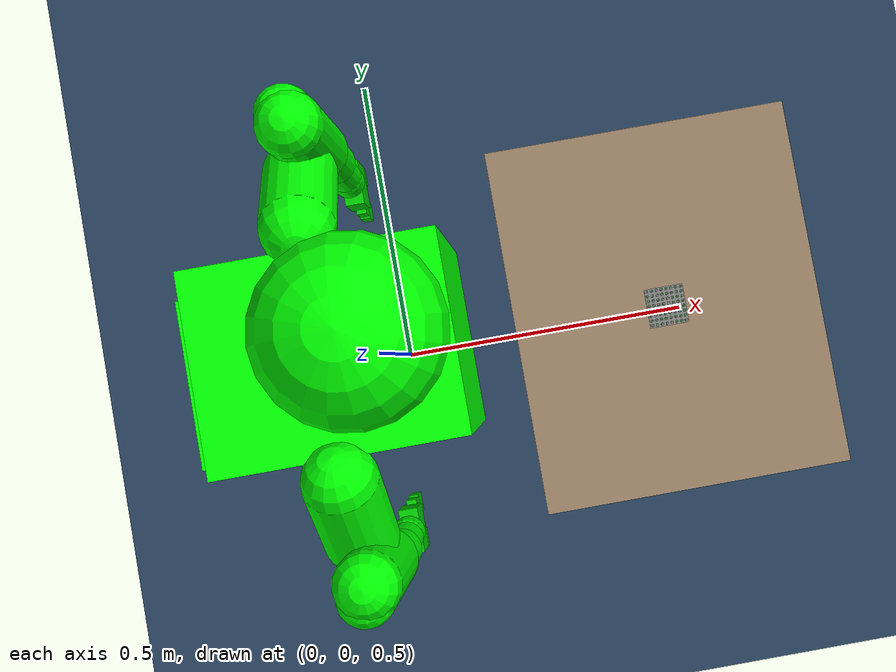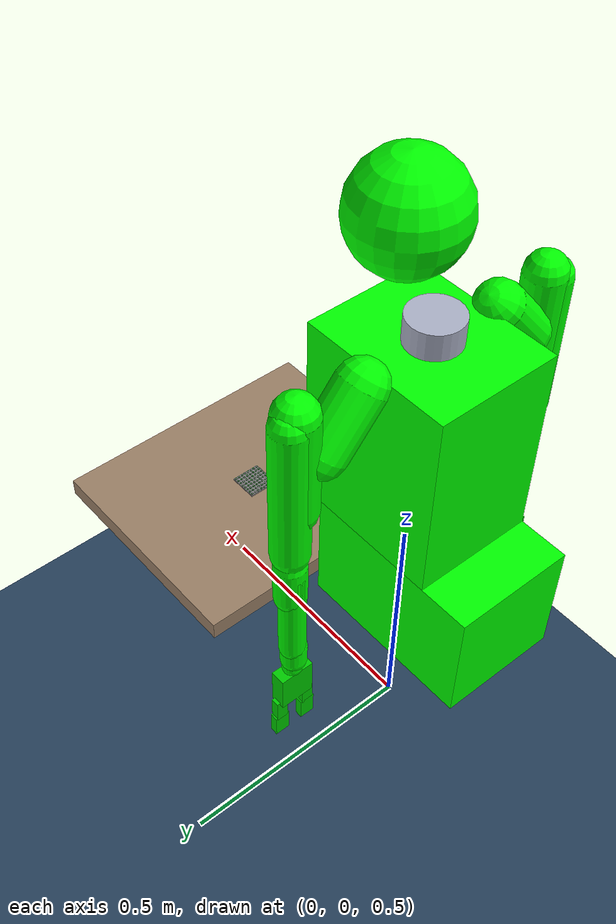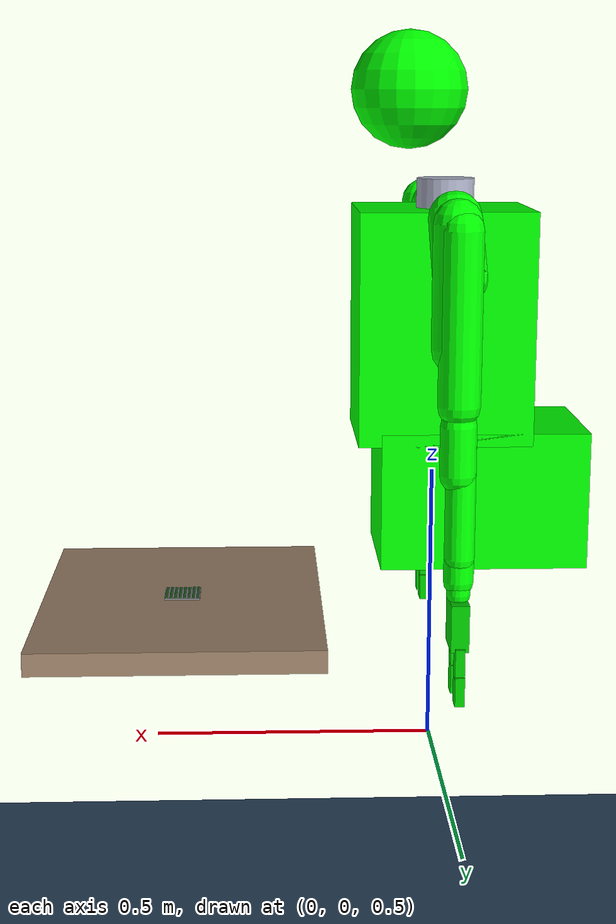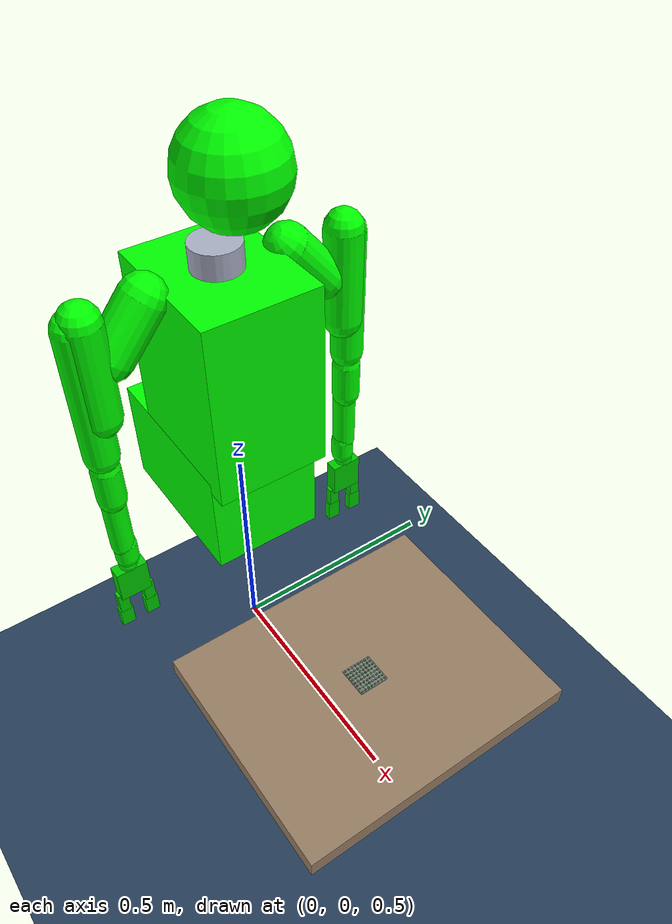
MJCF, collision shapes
<mujoco model="alex_lego_workspace">
    <compiler meshdir="../robots/alex/" balanceinertia="true" />
    <include file="../robots/alex/alex.xml" />
    <option timestep="0.002" gravity="0 0 -9.81" integrator="implicitfast" cone="pyramidal" solver="Newton" iterations="80" ls_iterations="10">
        <flag energy="enable" />
    </option>
    <default>
        <default class="lego/stud">
            <geom contype="6" conaffinity="7" solref="0.003 1.0" solimp="0.97 0.995 0.001 0.5 4" friction="0.65 0.005 0.005" condim="4" />
        </default>
        <default class="lego/tube">
            <geom contype="4" conaffinity="4" solref="0.003 1.0" solimp="0.97 0.995 0.001 0.5 4" friction="0.65 0.005 0.005" condim="4" />
        </default>
        <default class="lego/brick_surface">
            <geom contype="2" conaffinity="3" solref="0.005 1.0" solimp="0.9 0.95 0.001 0.5 2" friction="0.4 0.005 0.002" condim="3" />
        </default>
        <default class="lego/baseplate">
            <geom contype="2" conaffinity="3" solref="0.005 1.0" solimp="0.9 0.95 0.001 0.5 2" friction="0.6 0.01 0.005" condim="3" />
        </default>
    </default>
    <statistic center="0 0 1.0" extent="1.5" />
    <visual>
        <headlight diffuse="0.6 0.6 0.6" ambient="0.3 0.3 0.3" specular="0 0 0" />
        <rgba haze="0.15 0.25 0.35 1" />
        <global azimuth="120" elevation="-20" offwidth="1280" offheight="720" />
    </visual>
    <asset>
        <texture type="2d" name="groundplane" builtin="checker" rgb1="0.2 0.3 0.4" rgb2="0.1 0.2 0.3" width="300" height="300" />
        <material name="groundplane" texture="groundplane" texuniform="true" texrepeat="5 5" />
        <material name="table_wood" rgba="0.6 0.5 0.4 1" />
    </asset>
    <worldbody>
        <light pos="0 0 3" dir="0 0 -1" directional="true" />
        <camera name="overhead" pos="0 -2 2" xyaxes="1 0 0 0 0.7 0.7" />
        <camera name="third_person" pos="2.0 -1.3 1.7" xyaxes="0.55 0.83 0 -0.25 0.17 0.95" fovy="60" />
        <camera name="workspace_closeup" pos="0.6 -0.25 1.05" xyaxes="0.85 0.53 0 -0.22 0.35 0.91" fovy="50" />
        <geom name="floor" type="plane" size="0 0 0.05" material="groundplane" contype="1" conaffinity="1" priority="1" friction="0.8" condim="3" />
        <body name="table" pos="0.45 0 0.75">
            <geom type="box" size="0.25 0.3 0.02" material="table_wood" contype="1" conaffinity="1" friction="0.6" mass="10" />
        </body>
        <body name="baseplate_8x8" pos="0.45 0 0.77">
            <inertial pos="0 0 0.0016" mass="0.015744" diaginertia="0.0000053538 0.0000053538 0.0000106808" />
            <geom class="lego/baseplate" name="baseplate_8x8_surface" type="box" size="0.0319 0.0319 0.0016" pos="0 0 0.0016" group="3" />
            <geom name="baseplate_8x8_surface_vis" type="box" size="0.0319 0.0319 0.0016" pos="0 0 0.0016" group="0" contype="0" conaffinity="0" rgba="0.16 0.5 0.16 1" />
            <geom class="lego/stud" name="baseplate_8x8_stud_0_0" type="cylinder" size="0.00235 0.00085" pos="-0.028 -0.028 0.00405" group="3" />
            <geom name="baseplate_8x8_stud_0_0_vis" type="cylinder" size="0.0024 0.00085" pos="-0.028 -0.028 0.00405" group="0" contype="0" conaffinity="0" rgba="0.16 0.5 0.16 1" />
            <geom class="lego/stud" name="baseplate_8x8_stud_0_1" type="cylinder" size="0.00235 0.00085" pos="-0.028 -0.02 0.00405" group="3" />
            <geom name="baseplate_8x8_stud_0_1_vis" type="cylinder" size="0.0024 0.00085" pos="-0.028 -0.02 0.00405" group="0" contype="0" conaffinity="0" rgba="0.16 0.5 0.16 1" />
            <geom class="lego/stud" name="baseplate_8x8_stud_0_2" type="cylinder" size="0.00235 0.00085" pos="-0.028 -0.012 0.00405" group="3" />
            <geom name="baseplate_8x8_stud_0_2_vis" type="cylinder" size="0.0024 0.00085" pos="-0.028 -0.012 0.00405" group="0" contype="0" conaffinity="0" rgba="0.16 0.5 0.16 1" />
            <geom class="lego/stud" name="baseplate_8x8_stud_0_3" type="cylinder" size="0.00235 0.00085" pos="-0.028 -0.004 0.00405" group="3" />
            <geom name="baseplate_8x8_stud_0_3_vis" type="cylinder" size="0.0024 0.00085" pos="-0.028 -0.004 0.00405" group="0" contype="0" conaffinity="0" rgba="0.16 0.5 0.16 1" />
            <geom class="lego/stud" name="baseplate_8x8_stud_0_4" type="cylinder" size="0.00235 0.00085" pos="-0.028 0.004 0.00405" group="3" />
            <geom name="baseplate_8x8_stud_0_4_vis" type="cylinder" size="0.0024 0.00085" pos="-0.028 0.004 0.00405" group="0" contype="0" conaffinity="0" rgba="0.16 0.5 0.16 1" />
            <geom class="lego/stud" name="baseplate_8x8_stud_0_5" type="cylinder" size="0.00235 0.00085" pos="-0.028 0.012 0.00405" group="3" />
            <geom name="baseplate_8x8_stud_0_5_vis" type="cylinder" size="0.0024 0.00085" pos="-0.028 0.012 0.00405" group="0" contype="0" conaffinity="0" rgba="0.16 0.5 0.16 1" />
            <geom class="lego/stud" name="baseplate_8x8_stud_0_6" type="cylinder" size="0.00235 0.00085" pos="-0.028 0.02 0.00405" group="3" />
            <geom name="baseplate_8x8_stud_0_6_vis" type="cylinder" size="0.0024 0.00085" pos="-0.028 0.02 0.00405" group="0" contype="0" conaffinity="0" rgba="0.16 0.5 0.16 1" />
            <geom class="lego/stud" name="baseplate_8x8_stud_0_7" type="cylinder" size="0.00235 0.00085" pos="-0.028 0.028 0.00405" group="3" />
            <geom name="baseplate_8x8_stud_0_7_vis" type="cylinder" size="0.0024 0.00085" pos="-0.028 0.028 0.00405" group="0" contype="0" conaffinity="0" rgba="0.16 0.5 0.16 1" />
            <geom class="lego/stud" name="baseplate_8x8_stud_1_0" type="cylinder" size="0.00235 0.00085" pos="-0.02 -0.028 0.00405" group="3" />
            <geom name="baseplate_8x8_stud_1_0_vis" type="cylinder" size="0.0024 0.00085" pos="-0.02 -0.028 0.00405" group="0" contype="0" conaffinity="0" rgba="0.16 0.5 0.16 1" />
            <geom class="lego/stud" name="baseplate_8x8_stud_1_1" type="cylinder" size="0.00235 0.00085" pos="-0.02 -0.02 0.00405" group="3" />
            <geom name="baseplate_8x8_stud_1_1_vis" type="cylinder" size="0.0024 0.00085" pos="-0.02 -0.02 0.00405" group="0" contype="0" conaffinity="0" rgba="0.16 0.5 0.16 1" />
            <geom class="lego/stud" name="baseplate_8x8_stud_1_2" type="cylinder" size="0.00235 0.00085" pos="-0.02 -0.012 0.00405" group="3" />
            <geom name="baseplate_8x8_stud_1_2_vis" type="cylinder" size="0.0024 0.00085" pos="-0.02 -0.012 0.00405" group="0" contype="0" conaffinity="0" rgba="0.16 0.5 0.16 1" />
            <geom class="lego/stud" name="baseplate_8x8_stud_1_3" type="cylinder" size="0.00235 0.00085" pos="-0.02 -0.004 0.00405" group="3" />
            <geom name="baseplate_8x8_stud_1_3_vis" type="cylinder" size="0.0024 0.00085" pos="-0.02 -0.004 0.00405" group="0" contype="0" conaffinity="0" rgba="0.16 0.5 0.16 1" />
            <geom class="lego/stud" name="baseplate_8x8_stud_1_4" type="cylinder" size="0.00235 0.00085" pos="-0.02 0.004 0.00405" group="3" />
            <geom name="baseplate_8x8_stud_1_4_vis" type="cylinder" size="0.0024 0.00085" pos="-0.02 0.004 0.00405" group="0" contype="0" conaffinity="0" rgba="0.16 0.5 0.16 1" />
            <geom class="lego/stud" name="baseplate_8x8_stud_1_5" type="cylinder" size="0.00235 0.00085" pos="-0.02 0.012 0.00405" group="3" />
            <geom name="baseplate_8x8_stud_1_5_vis" type="cylinder" size="0.0024 0.00085" pos="-0.02 0.012 0.00405" group="0" contype="0" conaffinity="0" rgba="0.16 0.5 0.16 1" />
            <geom class="lego/stud" name="baseplate_8x8_stud_1_6" type="cylinder" size="0.00235 0.00085" pos="-0.02 0.02 0.00405" group="3" />
            <geom name="baseplate_8x8_stud_1_6_vis" type="cylinder" size="0.0024 0.00085" pos="-0.02 0.02 0.00405" group="0" contype="0" conaffinity="0" rgba="0.16 0.5 0.16 1" />
            <geom class="lego/stud" name="baseplate_8x8_stud_1_7" type="cylinder" size="0.00235 0.00085" pos="-0.02 0.028 0.00405" group="3" />
            <geom name="baseplate_8x8_stud_1_7_vis" type="cylinder" size="0.0024 0.00085" pos="-0.02 0.028 0.00405" group="0" contype="0" conaffinity="0" rgba="0.16 0.5 0.16 1" />
            <geom class="lego/stud" name="baseplate_8x8_stud_2_0" type="cylinder" size="0.00235 0.00085" pos="-0.012 -0.028 0.00405" group="3" />
            <geom name="baseplate_8x8_stud_2_0_vis" type="cylinder" size="0.0024 0.00085" pos="-0.012 -0.028 0.00405" group="0" contype="0" conaffinity="0" rgba="0.16 0.5 0.16 1" />
            <geom class="lego/stud" name="baseplate_8x8_stud_2_1" type="cylinder" size="0.00235 0.00085" pos="-0.012 -0.02 0.00405" group="3" />
            <geom name="baseplate_8x8_stud_2_1_vis" type="cylinder" size="0.0024 0.00085" pos="-0.012 -0.02 0.00405" group="0" contype="0" conaffinity="0" rgba="0.16 0.5 0.16 1" />
            <geom class="lego/stud" name="baseplate_8x8_stud_2_2" type="cylinder" size="0.00235 0.00085" pos="-0.012 -0.012 0.00405" group="3" />
            <geom name="baseplate_8x8_stud_2_2_vis" type="cylinder" size="0.0024 0.00085" pos="-0.012 -0.012 0.00405" group="0" contype="0" conaffinity="0" rgba="0.16 0.5 0.16 1" />
            <geom class="lego/stud" name="baseplate_8x8_stud_2_3" type="cylinder" size="0.00235 0.00085" pos="-0.012 -0.004 0.00405" group="3" />
            <geom name="baseplate_8x8_stud_2_3_vis" type="cylinder" size="0.0024 0.00085" pos="-0.012 -0.004 0.00405" group="0" contype="0" conaffinity="0" rgba="0.16 0.5 0.16 1" />
            <geom class="lego/stud" name="baseplate_8x8_stud_2_4" type="cylinder" size="0.00235 0.00085" pos="-0.012 0.004 0.00405" group="3" />
            <geom name="baseplate_8x8_stud_2_4_vis" type="cylinder" size="0.0024 0.00085" pos="-0.012 0.004 0.00405" group="0" contype="0" conaffinity="0" rgba="0.16 0.5 0.16 1" />
            <geom class="lego/stud" name="baseplate_8x8_stud_2_5" type="cylinder" size="0.00235 0.00085" pos="-0.012 0.012 0.00405" group="3" />
            <geom name="baseplate_8x8_stud_2_5_vis" type="cylinder" size="0.0024 0.00085" pos="-0.012 0.012 0.00405" group="0" contype="0" conaffinity="0" rgba="0.16 0.5 0.16 1" />
            <geom class="lego/stud" name="baseplate_8x8_stud_2_6" type="cylinder" size="0.00235 0.00085" pos="-0.012 0.02 0.00405" group="3" />
            <geom name="baseplate_8x8_stud_2_6_vis" type="cylinder" size="0.0024 0.00085" pos="-0.012 0.02 0.00405" group="0" contype="0" conaffinity="0" rgba="0.16 0.5 0.16 1" />
            <geom class="lego/stud" name="baseplate_8x8_stud_2_7" type="cylinder" size="0.00235 0.00085" pos="-0.012 0.028 0.00405" group="3" />
            <geom name="baseplate_8x8_stud_2_7_vis" type="cylinder" size="0.0024 0.00085" pos="-0.012 0.028 0.00405" group="0" contype="0" conaffinity="0" rgba="0.16 0.5 0.16 1" />
            <geom class="lego/stud" name="baseplate_8x8_stud_3_0" type="cylinder" size="0.00235 0.00085" pos="-0.004 -0.028 0.00405" group="3" />
            <geom name="baseplate_8x8_stud_3_0_vis" type="cylinder" size="0.0024 0.00085" pos="-0.004 -0.028 0.00405" group="0" contype="0" conaffinity="0" rgba="0.16 0.5 0.16 1" />
            <geom class="lego/stud" name="baseplate_8x8_stud_3_1" type="cylinder" size="0.00235 0.00085" pos="-0.004 -0.02 0.00405" group="3" />
            <geom name="baseplate_8x8_stud_3_1_vis" type="cylinder" size="0.0024 0.00085" pos="-0.004 -0.02 0.00405" group="0" contype="0" conaffinity="0" rgba="0.16 0.5 0.16 1" />
            <geom class="lego/stud" name="baseplate_8x8_stud_3_2" type="cylinder" size="0.00235 0.00085" pos="-0.004 -0.012 0.00405" group="3" />
            <geom name="baseplate_8x8_stud_3_2_vis" type="cylinder" size="0.0024 0.00085" pos="-0.004 -0.012 0.00405" group="0" contype="0" conaffinity="0" rgba="0.16 0.5 0.16 1" />
            <geom class="lego/stud" name="baseplate_8x8_stud_3_3" type="cylinder" size="0.00235 0.00085" pos="-0.004 -0.004 0.00405" group="3" />
            <geom name="baseplate_8x8_stud_3_3_vis" type="cylinder" size="0.0024 0.00085" pos="-0.004 -0.004 0.00405" group="0" contype="0" conaffinity="0" rgba="0.16 0.5 0.16 1" />
            <geom class="lego/stud" name="baseplate_8x8_stud_3_4" type="cylinder" size="0.00235 0.00085" pos="-0.004 0.004 0.00405" group="3" />
            <geom name="baseplate_8x8_stud_3_4_vis" type="cylinder" size="0.0024 0.00085" pos="-0.004 0.004 0.00405" group="0" contype="0" conaffinity="0" rgba="0.16 0.5 0.16 1" />
            <geom class="lego/stud" name="baseplate_8x8_stud_3_5" type="cylinder" size="0.00235 0.00085" pos="-0.004 0.012 0.00405" group="3" />
            <geom name="baseplate_8x8_stud_3_5_vis" type="cylinder" size="0.0024 0.00085" pos="-0.004 0.012 0.00405" group="0" contype="0" conaffinity="0" rgba="0.16 0.5 0.16 1" />
            <geom class="lego/stud" name="baseplate_8x8_stud_3_6" type="cylinder" size="0.00235 0.00085" pos="-0.004 0.02 0.00405" group="3" />
            <geom name="baseplate_8x8_stud_3_6_vis" type="cylinder" size="0.0024 0.00085" pos="-0.004 0.02 0.00405" group="0" contype="0" conaffinity="0" rgba="0.16 0.5 0.16 1" />
            <geom class="lego/stud" name="baseplate_8x8_stud_3_7" type="cylinder" size="0.00235 0.00085" pos="-0.004 0.028 0.00405" group="3" />
            <geom name="baseplate_8x8_stud_3_7_vis" type="cylinder" size="0.0024 0.00085" pos="-0.004 0.028 0.00405" group="0" contype="0" conaffinity="0" rgba="0.16 0.5 0.16 1" />
            <geom class="lego/stud" name="baseplate_8x8_stud_4_0" type="cylinder" size="0.00235 0.00085" pos="0.004 -0.028 0.00405" group="3" />
            <geom name="baseplate_8x8_stud_4_0_vis" type="cylinder" size="0.0024 0.00085" pos="0.004 -0.028 0.00405" group="0" contype="0" conaffinity="0" rgba="0.16 0.5 0.16 1" />
            <geom class="lego/stud" name="baseplate_8x8_stud_4_1" type="cylinder" size="0.00235 0.00085" pos="0.004 -0.02 0.00405" group="3" />
            <geom name="baseplate_8x8_stud_4_1_vis" type="cylinder" size="0.0024 0.00085" pos="0.004 -0.02 0.00405" group="0" contype="0" conaffinity="0" rgba="0.16 0.5 0.16 1" />
            <geom class="lego/stud" name="baseplate_8x8_stud_4_2" type="cylinder" size="0.00235 0.00085" pos="0.004 -0.012 0.00405" group="3" />
            <geom name="baseplate_8x8_stud_4_2_vis" type="cylinder" size="0.0024 0.00085" pos="0.004 -0.012 0.00405" group="0" contype="0" conaffinity="0" rgba="0.16 0.5 0.16 1" />
            <geom class="lego/stud" name="baseplate_8x8_stud_4_3" type="cylinder" size="0.00235 0.00085" pos="0.004 -0.004 0.00405" group="3" />
            <geom name="baseplate_8x8_stud_4_3_vis" type="cylinder" size="0.0024 0.00085" pos="0.004 -0.004 0.00405" group="0" contype="0" conaffinity="0" rgba="0.16 0.5 0.16 1" />
            <geom class="lego/stud" name="baseplate_8x8_stud_4_4" type="cylinder" size="0.00235 0.00085" pos="0.004 0.004 0.00405" group="3" />
            <geom name="baseplate_8x8_stud_4_4_vis" type="cylinder" size="0.0024 0.00085" pos="0.004 0.004 0.00405" group="0" contype="0" conaffinity="0" rgba="0.16 0.5 0.16 1" />
            <geom class="lego/stud" name="baseplate_8x8_stud_4_5" type="cylinder" size="0.00235 0.00085" pos="0.004 0.012 0.00405" group="3" />
            <geom name="baseplate_8x8_stud_4_5_vis" type="cylinder" size="0.0024 0.00085" pos="0.004 0.012 0.00405" group="0" contype="0" conaffinity="0" rgba="0.16 0.5 0.16 1" />
            <geom class="lego/stud" name="baseplate_8x8_stud_4_6" type="cylinder" size="0.00235 0.00085" pos="0.004 0.02 0.00405" group="3" />
            <geom name="baseplate_8x8_stud_4_6_vis" type="cylinder" size="0.0024 0.00085" pos="0.004 0.02 0.00405" group="0" contype="0" conaffinity="0" rgba="0.16 0.5 0.16 1" />
            <geom class="lego/stud" name="baseplate_8x8_stud_4_7" type="cylinder" size="0.00235 0.00085" pos="0.004 0.028 0.00405" group="3" />
            <geom name="baseplate_8x8_stud_4_7_vis" type="cylinder" size="0.0024 0.00085" pos="0.004 0.028 0.00405" group="0" contype="0" conaffinity="0" rgba="0.16 0.5 0.16 1" />
            <geom class="lego/stud" name="baseplate_8x8_stud_5_0" type="cylinder" size="0.00235 0.00085" pos="0.012 -0.028 0.00405" group="3" />
            <geom name="baseplate_8x8_stud_5_0_vis" type="cylinder" size="0.0024 0.00085" pos="0.012 -0.028 0.00405" group="0" contype="0" conaffinity="0" rgba="0.16 0.5 0.16 1" />
            <geom class="lego/stud" name="baseplate_8x8_stud_5_1" type="cylinder" size="0.00235 0.00085" pos="0.012 -0.02 0.00405" group="3" />
            <geom name="baseplate_8x8_stud_5_1_vis" type="cylinder" size="0.0024 0.00085" pos="0.012 -0.02 0.00405" group="0" contype="0" conaffinity="0" rgba="0.16 0.5 0.16 1" />
            <geom class="lego/stud" name="baseplate_8x8_stud_5_2" type="cylinder" size="0.00235 0.00085" pos="0.012 -0.012 0.00405" group="3" />
            <geom name="baseplate_8x8_stud_5_2_vis" type="cylinder" size="0.0024 0.00085" pos="0.012 -0.012 0.00405" group="0" contype="0" conaffinity="0" rgba="0.16 0.5 0.16 1" />
            <geom class="lego/stud" name="baseplate_8x8_stud_5_3" type="cylinder" size="0.00235 0.00085" pos="0.012 -0.004 0.00405" group="3" />
            <geom name="baseplate_8x8_stud_5_3_vis" type="cylinder" size="0.0024 0.00085" pos="0.012 -0.004 0.00405" group="0" contype="0" conaffinity="0" rgba="0.16 0.5 0.16 1" />
            <geom class="lego/stud" name="baseplate_8x8_stud_5_4" type="cylinder" size="0.00235 0.00085" pos="0.012 0.004 0.00405" group="3" />
            <geom name="baseplate_8x8_stud_5_4_vis" type="cylinder" size="0.0024 0.00085" pos="0.012 0.004 0.00405" group="0" contype="0" conaffinity="0" rgba="0.16 0.5 0.16 1" />
            <geom class="lego/stud" name="baseplate_8x8_stud_5_5" type="cylinder" size="0.00235 0.00085" pos="0.012 0.012 0.00405" group="3" />
            <geom name="baseplate_8x8_stud_5_5_vis" type="cylinder" size="0.0024 0.00085" pos="0.012 0.012 0.00405" group="0" contype="0" conaffinity="0" rgba="0.16 0.5 0.16 1" />
            <geom class="lego/stud" name="baseplate_8x8_stud_5_6" type="cylinder" size="0.00235 0.00085" pos="0.012 0.02 0.00405" group="3" />
            <geom name="baseplate_8x8_stud_5_6_vis" type="cylinder" size="0.0024 0.00085" pos="0.012 0.02 0.00405" group="0" contype="0" conaffinity="0" rgba="0.16 0.5 0.16 1" />
            <geom class="lego/stud" name="baseplate_8x8_stud_5_7" type="cylinder" size="0.00235 0.00085" pos="0.012 0.028 0.00405" group="3" />
            <geom name="baseplate_8x8_stud_5_7_vis" type="cylinder" size="0.0024 0.00085" pos="0.012 0.028 0.00405" group="0" contype="0" conaffinity="0" rgba="0.16 0.5 0.16 1" />
            <geom class="lego/stud" name="baseplate_8x8_stud_6_0" type="cylinder" size="0.00235 0.00085" pos="0.02 -0.028 0.00405" group="3" />
            <geom name="baseplate_8x8_stud_6_0_vis" type="cylinder" size="0.0024 0.00085" pos="0.02 -0.028 0.00405" group="0" contype="0" conaffinity="0" rgba="0.16 0.5 0.16 1" />
            <geom class="lego/stud" name="baseplate_8x8_stud_6_1" type="cylinder" size="0.00235 0.00085" pos="0.02 -0.02 0.00405" group="3" />
            <geom name="baseplate_8x8_stud_6_1_vis" type="cylinder" size="0.0024 0.00085" pos="0.02 -0.02 0.00405" group="0" contype="0" conaffinity="0" rgba="0.16 0.5 0.16 1" />
            <geom class="lego/stud" name="baseplate_8x8_stud_6_2" type="cylinder" size="0.00235 0.00085" pos="0.02 -0.012 0.00405" group="3" />
            <geom name="baseplate_8x8_stud_6_2_vis" type="cylinder" size="0.0024 0.00085" pos="0.02 -0.012 0.00405" group="0" contype="0" conaffinity="0" rgba="0.16 0.5 0.16 1" />
            <geom class="lego/stud" name="baseplate_8x8_stud_6_3" type="cylinder" size="0.00235 0.00085" pos="0.02 -0.004 0.00405" group="3" />
            <geom name="baseplate_8x8_stud_6_3_vis" type="cylinder" size="0.0024 0.00085" pos="0.02 -0.004 0.00405" group="0" contype="0" conaffinity="0" rgba="0.16 0.5 0.16 1" />
            <geom class="lego/stud" name="baseplate_8x8_stud_6_4" type="cylinder" size="0.00235 0.00085" pos="0.02 0.004 0.00405" group="3" />
            <geom name="baseplate_8x8_stud_6_4_vis" type="cylinder" size="0.0024 0.00085" pos="0.02 0.004 0.00405" group="0" contype="0" conaffinity="0" rgba="0.16 0.5 0.16 1" />
            <geom class="lego/stud" name="baseplate_8x8_stud_6_5" type="cylinder" size="0.00235 0.00085" pos="0.02 0.012 0.00405" group="3" />
            <geom name="baseplate_8x8_stud_6_5_vis" type="cylinder" size="0.0024 0.00085" pos="0.02 0.012 0.00405" group="0" contype="0" conaffinity="0" rgba="0.16 0.5 0.16 1" />
            <geom class="lego/stud" name="baseplate_8x8_stud_6_6" type="cylinder" size="0.00235 0.00085" pos="0.02 0.02 0.00405" group="3" />
            <geom name="baseplate_8x8_stud_6_6_vis" type="cylinder" size="0.0024 0.00085" pos="0.02 0.02 0.00405" group="0" contype="0" conaffinity="0" rgba="0.16 0.5 0.16 1" />
            <geom class="lego/stud" name="baseplate_8x8_stud_6_7" type="cylinder" size="0.00235 0.00085" pos="0.02 0.028 0.00405" group="3" />
            <geom name="baseplate_8x8_stud_6_7_vis" type="cylinder" size="0.0024 0.00085" pos="0.02 0.028 0.00405" group="0" contype="0" conaffinity="0" rgba="0.16 0.5 0.16 1" />
            <geom class="lego/stud" name="baseplate_8x8_stud_7_0" type="cylinder" size="0.00235 0.00085" pos="0.028 -0.028 0.00405" group="3" />
            <geom name="baseplate_8x8_stud_7_0_vis" type="cylinder" size="0.0024 0.00085" pos="0.028 -0.028 0.00405" group="0" contype="0" conaffinity="0" rgba="0.16 0.5 0.16 1" />
            <geom class="lego/stud" name="baseplate_8x8_stud_7_1" type="cylinder" size="0.00235 0.00085" pos="0.028 -0.02 0.00405" group="3" />
            <geom name="baseplate_8x8_stud_7_1_vis" type="cylinder" size="0.0024 0.00085" pos="0.028 -0.02 0.00405" group="0" contype="0" conaffinity="0" rgba="0.16 0.5 0.16 1" />
            <geom class="lego/stud" name="baseplate_8x8_stud_7_2" type="cylinder" size="0.00235 0.00085" pos="0.028 -0.012 0.00405" group="3" />
            <geom name="baseplate_8x8_stud_7_2_vis" type="cylinder" size="0.0024 0.00085" pos="0.028 -0.012 0.00405" group="0" contype="0" conaffinity="0" rgba="0.16 0.5 0.16 1" />
            <geom class="lego/stud" name="baseplate_8x8_stud_7_3" type="cylinder" size="0.00235 0.00085" pos="0.028 -0.004 0.00405" group="3" />
            <geom name="baseplate_8x8_stud_7_3_vis" type="cylinder" size="0.0024 0.00085" pos="0.028 -0.004 0.00405" group="0" contype="0" conaffinity="0" rgba="0.16 0.5 0.16 1" />
            <geom class="lego/stud" name="baseplate_8x8_stud_7_4" type="cylinder" size="0.00235 0.00085" pos="0.028 0.004 0.00405" group="3" />
            <geom name="baseplate_8x8_stud_7_4_vis" type="cylinder" size="0.0024 0.00085" pos="0.028 0.004 0.00405" group="0" contype="0" conaffinity="0" rgba="0.16 0.5 0.16 1" />
            <geom class="lego/stud" name="baseplate_8x8_stud_7_5" type="cylinder" size="0.00235 0.00085" pos="0.028 0.012 0.00405" group="3" />
            <geom name="baseplate_8x8_stud_7_5_vis" type="cylinder" size="0.0024 0.00085" pos="0.028 0.012 0.00405" group="0" contype="0" conaffinity="0" rgba="0.16 0.5 0.16 1" />
            <geom class="lego/stud" name="baseplate_8x8_stud_7_6" type="cylinder" size="0.00235 0.00085" pos="0.028 0.02 0.00405" group="3" />
            <geom name="baseplate_8x8_stud_7_6_vis" type="cylinder" size="0.0024 0.00085" pos="0.028 0.02 0.00405" group="0" contype="0" conaffinity="0" rgba="0.16 0.5 0.16 1" />
            <geom class="lego/stud" name="baseplate_8x8_stud_7_7" type="cylinder" size="0.00235 0.00085" pos="0.028 0.028 0.00405" group="3" />
            <geom name="baseplate_8x8_stud_7_7_vis" type="cylinder" size="0.0024 0.00085" pos="0.028 0.028 0.00405" group="0" contype="0" conaffinity="0" rgba="0.16 0.5 0.16 1" />
        </body>
    </worldbody>
    <keyframe>
        <key name="home" qpos="0 0 0 0 0 0 0 0 0 0 0 0 0 0 0 0 0 0 0 0 0 0 0" ctrl="0 0 0 0 0 0 0 0 0 0 0 0 0 0 0 0 0" />
    </keyframe>
</mujoco>

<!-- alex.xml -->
<mujoco model="alex_upper_body">

    <compiler angle="radian" eulerseq="XYZ" autolimits="true"
              balanceinertia="true"/>

    <option iterations="50" ls_iterations="10" timestep="0.002" integrator="implicitfast">
        <flag energy="enable"/>
    </option>

    <default>
        <default class="alex">
            <joint damping="2" frictionloss="0.3"/>
            <position inheritrange="1"/>
            <default class="alex/spine">
                <joint axis="0 0 1" range="-0.5235987756 0.5235987756"
                       armature="0.01" damping="2.0" frictionloss="0.3"/>
                <position forcerange="-150 150" kp="112"/>
            </default>
            <default class="alex/shoulder">
                <default class="alex/shoulder/y">
                    <joint axis="0 1 0" range="-3.141592 1.22173"
                           armature="0.01" damping="2.0" frictionloss="0.3"/>
                    <position forcerange="-150 150" kp="112.5"/>
                </default>
                <default class="alex/shoulder/x">
                    <joint axis="1 0 0" armature="0.01" damping="2.0" frictionloss="0.3"/>
                    <position forcerange="-100 100" kp="75"/>
                    <default class="alex/shoulder/x/left">
                        <joint range="-0.349066 2.79253"/>
                    </default>
                    <default class="alex/shoulder/x/right">
                        <joint range="-2.79253 0.349066"/>
                    </default>
                </default>
                <default class="alex/shoulder/z">
                    <joint axis="0 0 1" armature="0.01" damping="1.5" frictionloss="0.2"/>
                    <position forcerange="-80 80" kp="60"/>
                    <default class="alex/shoulder/z/left">
                        <joint range="-1.91986 1.22173"/>
                    </default>
                    <default class="alex/shoulder/z/right">
                        <joint range="-1.22173 1.91986"/>
                    </default>
                </default>
            </default>
            <default class="alex/elbow">
                <joint axis="0 1 0" range="-2.35619 0.174532925"
                       armature="0.01" damping="1.5" frictionloss="0.2"/>
                <position forcerange="-80 80" kp="60"/>
            </default>
            <default class="alex/wrist">
                <position forcerange="-20 20" kp="15"/>
                <default class="alex/wrist/z">
                    <joint axis="0 0 1" range="-2.61799 2.61799"
                           armature="0.01" damping="0.5" frictionloss="0.1"/>
                </default>
                <default class="alex/wrist/x">
                    <joint axis="1 0 0" armature="0.01" damping="0.5" frictionloss="0.1"/>
                    <default class="alex/wrist/x/left">
                        <joint range="-1.8326 0.610865"/>
                    </default>
                    <default class="alex/wrist/x/right">
                        <joint range="-0.610865 1.8326"/>
                    </default>
                </default>
            </default>
            <default class="alex/gripper">
                <joint axis="0 0 1" range="-2.61799 2.61799"
                       armature="0.01" damping="0.3" frictionloss="0.05"/>
                <position forcerange="-20 20" kp="15"/>
            </default>
            <default class="alex/visual">
                <geom contype="0" conaffinity="0" group="1" type="mesh"/>
            </default>
            <default class="alex/collision">
                <geom group="3" contype="1" conaffinity="1" rgba="0 1 0 0.3"
                      solref="0.005 1.0" solimp="0.9 0.95 0.001 0.5 2"/>
            </default>
            <!-- EZGripper Gen2 defaults -->
            <default class="alex/ezgripper">
                <default class="alex/ezgripper/knuckle">
                    <joint axis="0 1 0" range="0 1.94" armature="0.005"
                           damping="0.2" frictionloss="0.02"/>
                    <position forcerange="-8 8" kp="10" inheritrange="1"/>
                </default>
                <default class="alex/ezgripper/collision">
                    <geom group="3" contype="1" conaffinity="1" rgba="0 0.8 0 0.3"
                          friction="1.5 0.02 0.01"
                          solref="0.005 1.0" solimp="0.9 0.95 0.001 0.5 2"/>
                </default>
                <default class="alex/ezgripper/visual">
                    <geom contype="0" conaffinity="0" group="1" type="mesh"/>
                </default>
            </default>
        </default>
    </default>

    <asset>
        <material name="gray" rgba="0.671705 0.692426 0.774270 1"/>
        <mesh name="pelvis" file="meshes/Pelvis.obj"/>
        <mesh name="torso" file="meshes/torso.obj"/>
        <mesh name="head" file="meshes/ALX02_01_A02_HeadLink.obj"/>
        <mesh name="left_shoulder_y" file="meshes/LeftShoulderPitchLink.obj"/>
        <mesh name="left_shoulder_x" file="meshes/LeftShoulderRollLink_longBicep.obj"/>
        <mesh name="left_shoulder_z" file="meshes/LeftShoulderYawLink.obj"/>
        <mesh name="left_elbow_y" file="meshes/LEFT_ELBOW_PITCH_LINK_413mm_LENGTH.obj"/>
        <mesh name="left_wrist_z" file="meshes/LeftWristYawLink.obj"/>
        <mesh name="left_wrist_x" file="meshes/LeftWristRollLink.obj"/>
        <mesh name="left_gripper" file="meshes/nub.obj"/>
        <mesh name="right_shoulder_y" file="meshes/RightShoulderPitchLink.obj"/>
        <mesh name="right_shoulder_x" file="meshes/RightShoulderRollLink_longBicep.obj"/>
        <mesh name="right_shoulder_z" file="meshes/RightShoulderYawLink.obj"/>
        <mesh name="right_elbow_y" file="meshes/RIGHT_ELBOW_PITCH_LINK_413mm_LENGTH.obj"/>
        <mesh name="right_wrist_z" file="meshes/RightWristYawLink.obj"/>
        <mesh name="right_wrist_x" file="meshes/RightWristRollLink.obj"/>
        <mesh name="right_gripper" file="meshes/nub.obj"/>
        <!-- EZGripper Gen2 meshes -->
        <mesh name="ezgripper_palm" file="meshes/SAKE_Palm_Dual_Gen2.stl"/>
        <mesh name="ezgripper_finger_l1" file="meshes/SAKE_Finger_L1_Gen2.stl"/>
        <mesh name="ezgripper_finger_l2" file="meshes/SAKE_Finger_L2_Gen2.stl"/>
    </asset>

    <worldbody>
        <body name="base_link" pos="0.0 0.0 1.0" childclass="alex">
            <!-- No inertial needed: base_link is fixed to world (no joint) -->
            <geom mesh="pelvis" material="gray" class="alex/visual"/>
            <geom name="base_collision" type="box" size="0.18 0.12 0.12"
                  pos="-0.08 0 -0.03" class="alex/collision"/>

            <body name="torso" pos="0.0 0 0.018">
                <inertial
                    pos="-0.014 0.001 0.326"
                    mass="11.478322779"
                    fullinertia="0.1764967124 0.1237602 0.1109598365 2.329659e-05 0.00830355822 0.00072436338"
                />
                <joint name="spine_z" class="alex/spine"/>
                <geom mesh="torso" pos="0.0 0.0 0.105063" material="gray" class="alex/visual"/>
                <geom name="torso_collision" type="box" size="0.15 0.12 0.20"
                      pos="-0.01 0 0.25" class="alex/collision"/>

                <!-- ==================== LEFT ARM ==================== -->
                <body name="left_shoulder_y" pos="-0.015 0.115474 0.352984" euler="0.698132 0.0 0.0">
                    <inertial
                        pos="-0.00264 0.12135 -0.006824"
                        mass="3.0331992"
                        fullinertia="0.01114656 0.00699715 0.0099942 0.00024166 0.0001507 0.00308767"
                    />
                    <joint name="left_shoulder_y" class="alex/shoulder/y"/>
                    <geom mesh="left_shoulder_y" material="gray" class="alex/visual"/>
                    <geom name="left_shoulder_y_collision" type="capsule"
                          size="0.045 0.06" pos="0 0.08 -0.01" class="alex/collision"/>

                    <body name="left_shoulder_x" pos="0.0 0.15676000 -0.01300000" euler="-0.698132 0.0 0.0">
                        <inertial
                            pos="0.01053 0.02124 -0.1052690"
                            mass="1.16160776"
                            fullinertia="0.00786831 0.00727049 0.0018045 0.00016417 -0.00075696 0.00099239"
                        />
                        <joint name="left_shoulder_x" class="alex/shoulder/x/left"/>
                        <geom mesh="left_shoulder_x" material="gray" class="alex/visual"/>
                        <geom name="left_shoulder_x_collision" type="capsule"
                              size="0.04 0.10" pos="0.01 0.02 -0.10"
                              euler="0 0 0" class="alex/collision"/>

                        <body name="left_shoulder_z" pos="0.0 0.035 0.0">
                            <inertial
                                pos="0.00510403 0.00274 -0.21745"
                                mass="3.134"
                                fullinertia="0.02661157 0.02633278 0.00308445 2.97e-06 0.00147256 0.00039997"
                            />
                            <joint name="left_shoulder_z" class="alex/shoulder/z/left"/>
                            <geom mesh="left_shoulder_z" pos="0.0 0.0 0.0867" material="gray" class="alex/visual"/>
                            <geom name="left_shoulder_z_collision" type="capsule"
                                  size="0.035 0.14" pos="0.005 0 -0.15"
                                  class="alex/collision"/>

                            <body name="left_elbow_y" pos="0.015 0.0 -0.3127">
                                <inertial
                                    pos="-0.01180322 -0.0035763 -0.04946747"
                                    mass="0.45"
                                    fullinertia="0.0008940385 0.0002691585 0.0002478294 0.0004472422 0.0003653737 0.0001357858"
                                />
                                <joint name="left_elbow_y" class="alex/elbow"/>
                                <geom mesh="left_elbow_y" material="gray" class="alex/visual"/>
                                <geom name="left_elbow_y_collision" type="capsule"
                                      size="0.03 0.04" pos="-0.01 0 -0.05"
                                      class="alex/collision"/>

                                <body name="left_wrist_z" pos="-0.015 0.0 0.0">
                                    <inertial
                                        pos="-0.00263832 -0.00050534 -0.13018376"
                                        mass="1.547"
                                        fullinertia="0.004662587 0.001803105 0.0002966306 0.002825398 0.001028921 0.0006324909"
                                    />
                                    <joint name="left_wrist_z" class="alex/wrist/z"/>
                                    <geom mesh="left_wrist_z" material="gray" class="alex/visual"/>
                                    <geom name="left_wrist_z_collision" type="capsule"
                                          size="0.025 0.10" pos="0 0 -0.13"
                                          class="alex/collision"/>

                                    <body name="left_wrist_x" pos="0.0 -0.013 -0.25">
                                        <inertial
                                            pos="0.00004053 0.01038395 0.00035532"
                                            mass="0.909"
                                            fullinertia="0.0006553625 0.0001645745 0.0001827797 0.0003160572 0.000334132 0.0001635935"
                                        />
                                        <joint name="left_wrist_x" class="alex/wrist/x/left"/>
                                        <geom mesh="left_wrist_x" material="gray" class="alex/visual"/>
                                        <geom name="left_wrist_x_collision" type="capsule"
                                              size="0.025 0.02" pos="0 0.01 0"
                                              class="alex/collision"/>

                                        <body name="left_gripper" pos="0.0 0.013 -0.031">
                                            <inertial
                                                pos="-0.000217 -0.000349 0.009761"
                                                mass="0.251"
                                                fullinertia="8.862382e-05 3.167086e-05 7.770774e-06 5.132406e-05 2.139744e-05 1.195988e-05"
                                            />
                                            <joint name="left_gripper_z" class="alex/gripper"/>
                                            <geom name="left_gripper_collision" type="capsule"
                                                  size="0.02 0.02" pos="0 0 0.01"
                                                  class="alex/collision"/>
                                            <site name="left_ee_site" pos="0 0 0.03"
                                                  type="sphere" size="0.008" rgba="1 0 0 0.5" group="4"/>
                                            <!-- Left wrist camera: attached to gripper body,
                                                 looks along +Z (toward fingertips/workspace). -->
                                            <camera name="left_wrist_cam" pos="0 0 0"
                                                    xyaxes="1 0 0 0 -1 0" fovy="75"/>

                                            <!-- EZGripper Gen2 -->
                                            <!-- Adapter transform from IHMC URDF (verified via FK symmetry — 0.0 cm error) -->
                                            <body name="left_ezgripper_palm" pos="0 0 -0.02" euler="3.14159 1.5708 0">
                                                <inertial pos="0.04 0 0" mass="0.3"
                                                          diaginertia="0.0003 0.0005 0.0004"/>
                                                <geom mesh="ezgripper_palm" material="gray"
                                                      class="alex/ezgripper/visual"/>
                                                <geom name="left_palm_collision" type="box"
                                                      size="0.04 0.035 0.015" pos="0.04 0 0"
                                                      class="alex/ezgripper/collision"/>
                                                <site name="left_tool_frame" pos="0.073 0 0"
                                                      type="sphere" size="0.005"
                                                      rgba="1 1 0 0.5" group="4"/>

                                                <!-- Finger 1 (primary, actuated) -->
                                                <body name="left_finger1_l1" pos="0.073 0.03 0">
                                                    <inertial pos="0.026 0 0" mass="0.025"
                                                              diaginertia="5e-06 2e-05 2e-05"/>
                                                    <joint name="left_knuckle_palm_l1_1"
                                                           class="alex/ezgripper/knuckle"/>
                                                    <geom mesh="ezgripper_finger_l1"
                                                          class="alex/ezgripper/visual"/>
                                                    <geom name="left_finger1_l1_col" type="box"
                                                          size="0.026 0.012 0.008" pos="0.026 0 0"
                                                          class="alex/ezgripper/collision"/>
                                                    <body name="left_finger1_l2" pos="0.052 0 0">
                                                        <inertial pos="0.02 0 0" mass="0.025"
                                                                  diaginertia="4e-06 1.5e-05 1.5e-05"/>
                                                        <joint name="left_knuckle_l1_l2_1"
                                                               class="alex/ezgripper/knuckle"/>
                                                        <geom mesh="ezgripper_finger_l2"
                                                              class="alex/ezgripper/visual"/>
                                                        <geom name="left_finger1_pad" type="box"
                                                              size="0.025 0.015 0.008" pos="0.02 0 0"
                                                              class="alex/ezgripper/collision"/>
                                                    </body>
                                                </body>

                                                <!-- Finger 2 (coupled to finger 1) -->
                                                <body name="left_finger2_l1" pos="0.073 -0.03 0">
                                                    <inertial pos="0.026 0 0" mass="0.025"
                                                              diaginertia="5e-06 2e-05 2e-05"/>
                                                    <joint name="left_knuckle_palm_l1_2"
                                                           class="alex/ezgripper/knuckle"/>
                                                    <geom mesh="ezgripper_finger_l1"
                                                          class="alex/ezgripper/visual"/>
                                                    <geom name="left_finger2_l1_col" type="box"
                                                          size="0.026 0.012 0.008" pos="0.026 0 0"
                                                          class="alex/ezgripper/collision"/>
                                                    <body name="left_finger2_l2" pos="0.052 0 0">
                                                        <inertial pos="0.02 0 0" mass="0.025"
                                                                  diaginertia="4e-06 1.5e-05 1.5e-05"/>
                                                        <joint name="left_knuckle_l1_l2_2"
                                                               class="alex/ezgripper/knuckle"/>
                                                        <geom mesh="ezgripper_finger_l2"
                                                              class="alex/ezgripper/visual"/>
                                                        <geom name="left_finger2_pad" type="box"
                                                              size="0.025 0.015 0.008" pos="0.02 0 0"
                                                              class="alex/ezgripper/collision"/>
                                                    </body>
                                                </body>
                                            </body>
                                        </body>
                                    </body>
                                </body>
                            </body>
                        </body>
                    </body>
                </body>

                <!-- ==================== NECK / HEAD (fixed) ==================== -->
                <body name="neck_z" pos="-0.015 0 0.450403">
                    <inertial
                        pos="0.00626571 0.0059834 0.15148116"
                        mass="1.03172573"
                        fullinertia="0.00611354 0.00602503 0.0009799 -5.224e-05 -0.00058532 -0.00028073"
                    />
                    <!-- neck_z joint REMOVED (fixed) -->
                    <geom type="cylinder" size="0.05 0.05" material="gray" class="alex/visual"/>

                    <body name="head" pos="0.025 0.01 0.189597">
                        <inertial
                            pos="0.0407664 -0.00396678 0.007163"
                            mass="1.27065932"
                            fullinertia="0.00424227 0.00501825 0.00451978 -8.839e-05 0.00054485 -0.00010863"
                        />
                        <!-- neck_y joint REMOVED (fixed) -->
                        <geom mesh="head" material="gray" class="alex/visual"/>
                        <geom name="head_collision" type="sphere" size="0.10"
                              pos="0.04 0 0.01" class="alex/collision"/>
                        <camera name="robot_cam" pos="0.08 0 0.0"
                                xyaxes="0 -1 0 0 0 1" fovy="60"/>
                    </body>
                </body>

                <!-- ==================== RIGHT ARM ==================== -->
                <body name="right_shoulder_y" pos="-0.015 -0.115474 0.352984" euler="-0.698132 0.0 0.0">
                    <inertial
                        pos="-0.00264 -0.12135 -0.006824"
                        mass="3.00752318"
                        fullinertia="0.01107924 0.00695098 0.00991808 -0.00026479 -0.00015595 -0.00308767"
                    />
                    <joint name="right_shoulder_y" class="alex/shoulder/y"/>
                    <geom mesh="right_shoulder_y" material="gray" class="alex/visual"/>
                    <geom name="right_shoulder_y_collision" type="capsule"
                          size="0.045 0.06" pos="0 -0.08 -0.01" class="alex/collision"/>

                    <body name="right_shoulder_x" pos="0.0 -0.15676000 -0.01300000" euler="0.698132 0.0 0.0">
                        <inertial
                            pos="0.01053 -0.02124 -0.1052690"
                            mass="1.1615873"
                            fullinertia="0.00786905 0.00727111 0.00180465 -0.00016408 -0.00075601 -0.00099114"
                        />
                        <joint name="right_shoulder_x" class="alex/shoulder/x/right"/>
                        <geom mesh="right_shoulder_x" material="gray" class="alex/visual"/>
                        <geom name="right_shoulder_x_collision" type="capsule"
                              size="0.04 0.10" pos="0.01 -0.02 -0.10"
                              euler="0 0 0" class="alex/collision"/>

                        <body name="right_shoulder_z" pos="0.0 -0.035 0.0">
                            <inertial
                                pos="0.00524 -0.00274 -0.21745"
                                mass="3.10111287"
                                fullinertia="0.0262817 0.02606342 0.00304834 9.96e-06 0.0015423 -0.0004047"
                            />
                            <joint name="right_shoulder_z" class="alex/shoulder/z/right"/>
                            <geom mesh="right_shoulder_z" pos="0.0 0.0 0.0867" material="gray" class="alex/visual"/>
                            <geom name="right_shoulder_z_collision" type="capsule"
                                  size="0.035 0.14" pos="0.005 0 -0.15"
                                  class="alex/collision"/>

                            <body name="right_elbow_y" pos="0.015 0.0 -0.3127">
                                <inertial
                                    pos="-0.0127 0.006913 -0.048421"
                                    mass="0.45"
                                    fullinertia="0.000797035 0.000249832 8.302455e-05 0.0004331871 0.000237797 0.0001310638"
                                />
                                <joint name="right_elbow_y" class="alex/elbow"/>
                                <geom mesh="right_elbow_y" material="gray" class="alex/visual"/>
                                <geom name="right_elbow_y_collision" type="capsule"
                                      size="0.03 0.04" pos="-0.01 0 -0.05"
                                      class="alex/collision"/>

                                <body name="right_wrist_z" pos="-0.015 0.0 0.0">
                                    <inertial
                                        pos="-0.002616 0.000462 -0.13019"
                                        mass="1.547"
                                        fullinertia="0.004654974 0.001787149 0.0003324517 0.002807599 0.001054646 0.0006365047"
                                    />
                                    <joint name="right_wrist_z" class="alex/wrist/z"/>
                                    <geom mesh="right_wrist_z" material="gray" class="alex/visual"/>
                                    <geom name="right_wrist_z_collision" type="capsule"
                                          size="0.025 0.10" pos="0 0 -0.13"
                                          class="alex/collision"/>

                                    <body name="right_wrist_x" pos="0.0 0.013 -0.25">
                                        <inertial
                                            pos="-0.0000481 -0.012143 0.000196"
                                            mass="0.909"
                                            fullinertia="0.0007546014 0.0001959656 0.0002152029 0.0003615291 0.0003818481 0.0001774088"
                                        />
                                        <joint name="right_wrist_x" class="alex/wrist/x/right"/>
                                        <geom mesh="right_wrist_x" material="gray" class="alex/visual"/>
                                        <geom name="right_wrist_x_collision" type="capsule"
                                              size="0.025 0.02" pos="0 -0.01 0"
                                              class="alex/collision"/>

                                        <body name="right_gripper" pos="0.0 -0.013 -0.031">
                                            <inertial
                                                pos="-0.000217 -0.000349 0.009761"
                                                mass="0.251"
                                                fullinertia="8.862382e-05 3.167086e-05 7.770774e-06 5.132406e-05 2.139744e-05 1.195988e-05"
                                            />
                                            <joint name="right_gripper_z" class="alex/gripper"/>
                                            <geom name="right_gripper_collision" type="capsule"
                                                  size="0.02 0.02" pos="0 0 0.01"
                                                  class="alex/collision"/>
                                            <site name="right_ee_site" pos="0 0 0.03"
                                                  type="sphere" size="0.008" rgba="0 0 1 0.5" group="4"/>
                                            <!-- Right wrist camera: attached to gripper body,
                                                 looks along +Z (toward fingertips/workspace). -->
                                            <camera name="right_wrist_cam" pos="0 0 0"
                                                    xyaxes="1 0 0 0 -1 0" fovy="75"/>

                                            <!-- EZGripper Gen2 -->
                                            <body name="right_ezgripper_palm" pos="0 0 -0.02" euler="3.14159 1.5708 0">
                                                <inertial pos="0.04 0 0" mass="0.3"
                                                          diaginertia="0.0003 0.0005 0.0004"/>
                                                <geom mesh="ezgripper_palm" material="gray"
                                                      class="alex/ezgripper/visual"/>
                                                <geom name="right_palm_collision" type="box"
                                                      size="0.04 0.035 0.015" pos="0.04 0 0"
                                                      class="alex/ezgripper/collision"/>
                                                <site name="right_tool_frame" pos="0.073 0 0"
                                                      type="sphere" size="0.005"
                                                      rgba="1 1 0 0.5" group="4"/>

                                                <!-- Finger 1 (primary, actuated) -->
                                                <body name="right_finger1_l1" pos="0.073 0.03 0">
                                                    <inertial pos="0.026 0 0" mass="0.025"
                                                              diaginertia="5e-06 2e-05 2e-05"/>
                                                    <joint name="right_knuckle_palm_l1_1"
                                                           class="alex/ezgripper/knuckle"/>
                                                    <geom mesh="ezgripper_finger_l1"
                                                          class="alex/ezgripper/visual"/>
                                                    <geom name="right_finger1_l1_col" type="box"
                                                          size="0.026 0.012 0.008" pos="0.026 0 0"
                                                          class="alex/ezgripper/collision"/>
                                                    <body name="right_finger1_l2" pos="0.052 0 0">
                                                        <inertial pos="0.02 0 0" mass="0.025"
                                                                  diaginertia="4e-06 1.5e-05 1.5e-05"/>
                                                        <joint name="right_knuckle_l1_l2_1"
                                                               class="alex/ezgripper/knuckle"/>
                                                        <geom mesh="ezgripper_finger_l2"
                                                              class="alex/ezgripper/visual"/>
                                                        <geom name="right_finger1_pad" type="box"
                                                              size="0.025 0.015 0.008" pos="0.02 0 0"
                                                              class="alex/ezgripper/collision"/>
                                                    </body>
                                                </body>

                                                <!-- Finger 2 (coupled to finger 1) -->
                                                <body name="right_finger2_l1" pos="0.073 -0.03 0">
                                                    <inertial pos="0.026 0 0" mass="0.025"
                                                              diaginertia="5e-06 2e-05 2e-05"/>
                                                    <joint name="right_knuckle_palm_l1_2"
                                                           class="alex/ezgripper/knuckle"/>
                                                    <geom mesh="ezgripper_finger_l1"
                                                          class="alex/ezgripper/visual"/>
                                                    <geom name="right_finger2_l1_col" type="box"
                                                          size="0.026 0.012 0.008" pos="0.026 0 0"
                                                          class="alex/ezgripper/collision"/>
                                                    <body name="right_finger2_l2" pos="0.052 0 0">
                                                        <inertial pos="0.02 0 0" mass="0.025"
                                                                  diaginertia="4e-06 1.5e-05 1.5e-05"/>
                                                        <joint name="right_knuckle_l1_l2_2"
                                                               class="alex/ezgripper/knuckle"/>
                                                        <geom mesh="ezgripper_finger_l2"
                                                              class="alex/ezgripper/visual"/>
                                                        <geom name="right_finger2_pad" type="box"
                                                              size="0.025 0.015 0.008" pos="0.02 0 0"
                                                              class="alex/ezgripper/collision"/>
                                                    </body>
                                                </body>
                                            </body>
                                        </body>
                                    </body>
                                </body>
                            </body>
                        </body>
                    </body>
                </body>
            </body>
        </body>
    </worldbody>

    <actuator>
        <position class="alex/spine" name="spine_z" joint="spine_z"/>
        <position class="alex/shoulder/y" name="left_shoulder_y" joint="left_shoulder_y"/>
        <position class="alex/shoulder/x" name="left_shoulder_x" joint="left_shoulder_x"/>
        <position class="alex/shoulder/z" name="left_shoulder_z" joint="left_shoulder_z"/>
        <position class="alex/elbow" name="left_elbow" joint="left_elbow_y"/>
        <position class="alex/wrist" name="left_wrist_z" joint="left_wrist_z"/>
        <position class="alex/wrist" name="left_wrist_x" joint="left_wrist_x"/>
        <position class="alex/gripper" name="left_gripper_z" joint="left_gripper_z"/>
        <position class="alex/shoulder/y" name="right_shoulder_y" joint="right_shoulder_y"/>
        <position class="alex/shoulder/x" name="right_shoulder_x" joint="right_shoulder_x"/>
        <position class="alex/shoulder/z" name="right_shoulder_z" joint="right_shoulder_z"/>
        <position class="alex/elbow" name="right_elbow" joint="right_elbow_y"/>
        <position class="alex/wrist" name="right_wrist_z" joint="right_wrist_z"/>
        <position class="alex/wrist" name="right_wrist_x" joint="right_wrist_x"/>
        <position class="alex/gripper" name="right_gripper_z" joint="right_gripper_z"/>
        <!-- EZGripper actuators: one per hand -->
        <position class="alex/ezgripper/knuckle" name="left_ezgripper"
                  joint="left_knuckle_palm_l1_1"/>
        <position class="alex/ezgripper/knuckle" name="right_ezgripper"
                  joint="right_knuckle_palm_l1_1"/>
    </actuator>

    <sensor>
        <framepos name="left_ee_pos" objtype="site" objname="left_ee_site"/>
        <framequat name="left_ee_quat" objtype="site" objname="left_ee_site"/>
        <framepos name="right_ee_pos" objtype="site" objname="right_ee_site"/>
        <framequat name="right_ee_quat" objtype="site" objname="right_ee_site"/>
        <!-- EZGripper tool frame sensors -->
        <framepos name="left_tool_pos" objtype="site" objname="left_tool_frame"/>
        <framequat name="left_tool_quat" objtype="site" objname="left_tool_frame"/>
        <framepos name="right_tool_pos" objtype="site" objname="right_tool_frame"/>
        <framequat name="right_tool_quat" objtype="site" objname="right_tool_frame"/>
    </sensor>

    <contact>
        <!-- Exclude adjacent body pairs (geometrically overlapping) -->
        <exclude body1="base_link" body2="torso"/>
        <exclude body1="torso" body2="left_shoulder_y"/>
        <exclude body1="torso" body2="right_shoulder_y"/>
        <exclude body1="torso" body2="neck_z"/>
        <exclude body1="neck_z" body2="head"/>
        <!-- Left arm chain: adjacent pairs -->
        <exclude body1="left_shoulder_y" body2="left_shoulder_x"/>
        <exclude body1="left_shoulder_x" body2="left_shoulder_z"/>
        <exclude body1="left_shoulder_z" body2="left_elbow_y"/>
        <exclude body1="left_elbow_y" body2="left_wrist_z"/>
        <exclude body1="left_wrist_z" body2="left_wrist_x"/>
        <exclude body1="left_wrist_x" body2="left_gripper"/>
        <!-- Left arm chain: 2-link-apart pairs (geometrically close) -->
        <exclude body1="left_shoulder_y" body2="left_shoulder_z"/>
        <exclude body1="left_shoulder_z" body2="left_wrist_z"/>
        <exclude body1="left_elbow_y" body2="left_wrist_x"/>
        <exclude body1="left_wrist_z" body2="left_gripper"/>
        <!-- Right arm chain: adjacent pairs -->
        <exclude body1="right_shoulder_y" body2="right_shoulder_x"/>
        <exclude body1="right_shoulder_x" body2="right_shoulder_z"/>
        <exclude body1="right_shoulder_z" body2="right_elbow_y"/>
        <exclude body1="right_elbow_y" body2="right_wrist_z"/>
        <exclude body1="right_wrist_z" body2="right_wrist_x"/>
        <exclude body1="right_wrist_x" body2="right_gripper"/>
        <!-- Right arm chain: 2-link-apart pairs (geometrically close) -->
        <exclude body1="right_shoulder_y" body2="right_shoulder_z"/>
        <exclude body1="right_shoulder_z" body2="right_wrist_z"/>
        <exclude body1="right_elbow_y" body2="right_wrist_x"/>
        <exclude body1="right_wrist_z" body2="right_gripper"/>
        <!-- Left EZGripper self-collision exclusions -->
        <exclude body1="left_gripper" body2="left_ezgripper_palm"/>
        <exclude body1="left_ezgripper_palm" body2="left_finger1_l1"/>
        <exclude body1="left_ezgripper_palm" body2="left_finger2_l1"/>
        <exclude body1="left_finger1_l1" body2="left_finger1_l2"/>
        <exclude body1="left_finger2_l1" body2="left_finger2_l2"/>
        <exclude body1="left_finger1_l1" body2="left_finger2_l1"/>
        <!-- Right EZGripper self-collision exclusions -->
        <exclude body1="right_gripper" body2="right_ezgripper_palm"/>
        <exclude body1="right_ezgripper_palm" body2="right_finger1_l1"/>
        <exclude body1="right_ezgripper_palm" body2="right_finger2_l1"/>
        <exclude body1="right_finger1_l1" body2="right_finger1_l2"/>
        <exclude body1="right_finger2_l1" body2="right_finger2_l2"/>
        <exclude body1="right_finger1_l1" body2="right_finger2_l1"/>
    </contact>

    <!-- EZGripper underactuation coupling -->
    <!-- All 4 finger joints per hand driven by single actuator via 1:1 equality -->
    <equality>
        <!-- Left: finger2 mimics finger1, L2 joints coupled to palm-L1 -->
        <joint joint1="left_knuckle_palm_l1_2" joint2="left_knuckle_palm_l1_1"
               polycoef="0 1 0 0 0"/>
        <joint joint1="left_knuckle_l1_l2_1" joint2="left_knuckle_palm_l1_1"
               polycoef="0 1 0 0 0"/>
        <joint joint1="left_knuckle_l1_l2_2" joint2="left_knuckle_palm_l1_1"
               polycoef="0 1 0 0 0"/>
        <!-- Right: same coupling -->
        <joint joint1="right_knuckle_palm_l1_2" joint2="right_knuckle_palm_l1_1"
               polycoef="0 1 0 0 0"/>
        <joint joint1="right_knuckle_l1_l2_1" joint2="right_knuckle_palm_l1_1"
               polycoef="0 1 0 0 0"/>
        <joint joint1="right_knuckle_l1_l2_2" joint2="right_knuckle_palm_l1_1"
               polycoef="0 1 0 0 0"/>
    </equality>

</mujoco>
